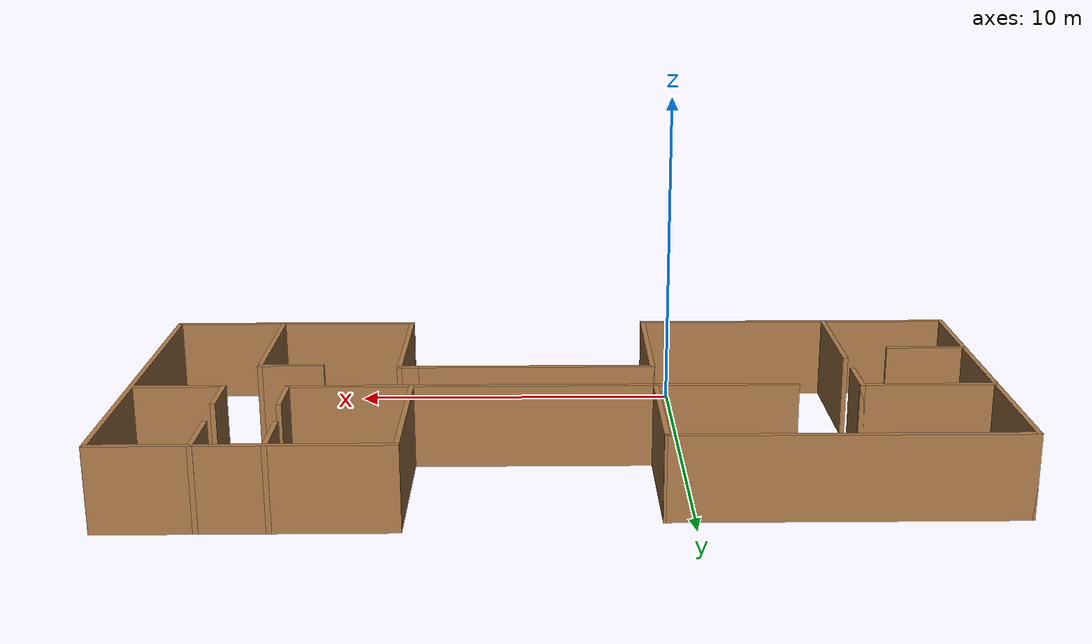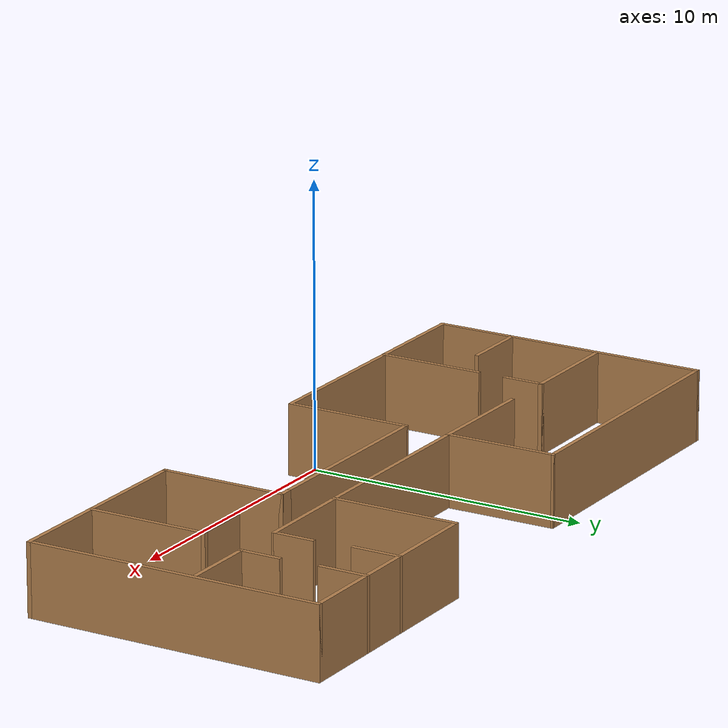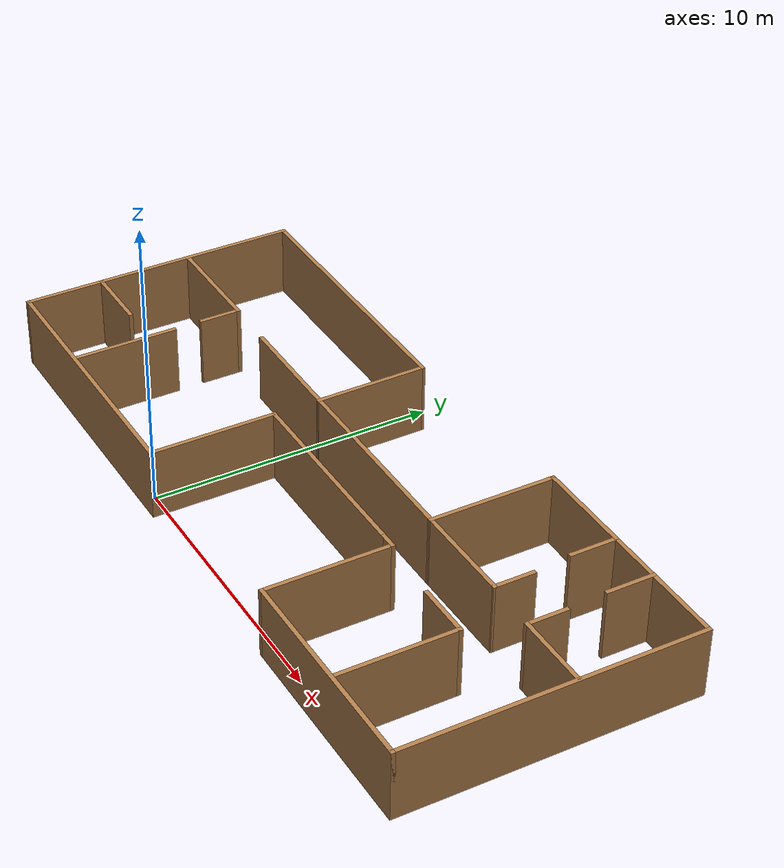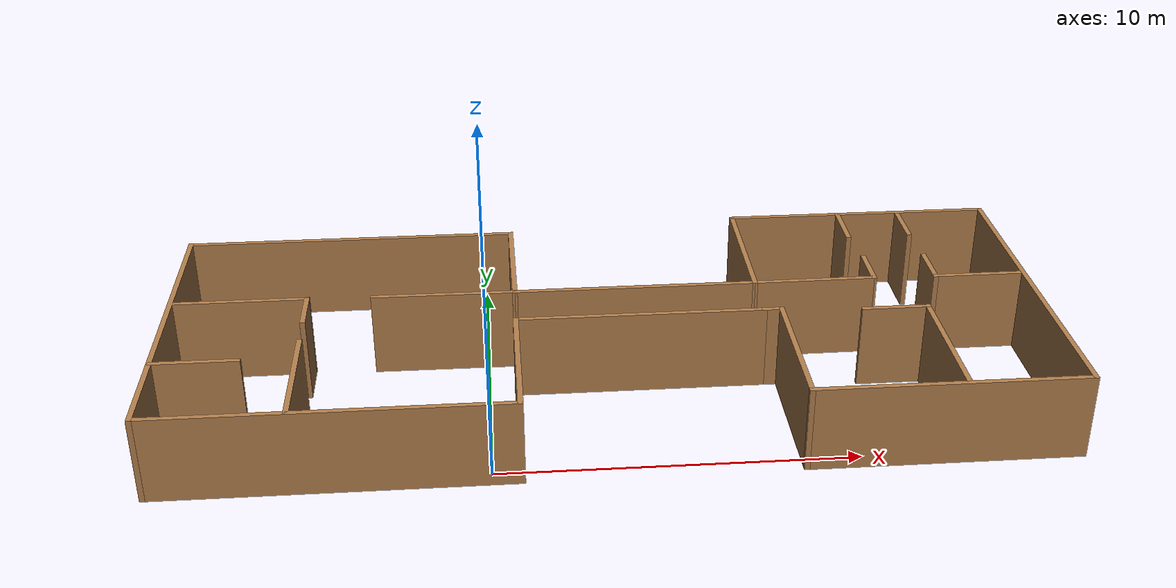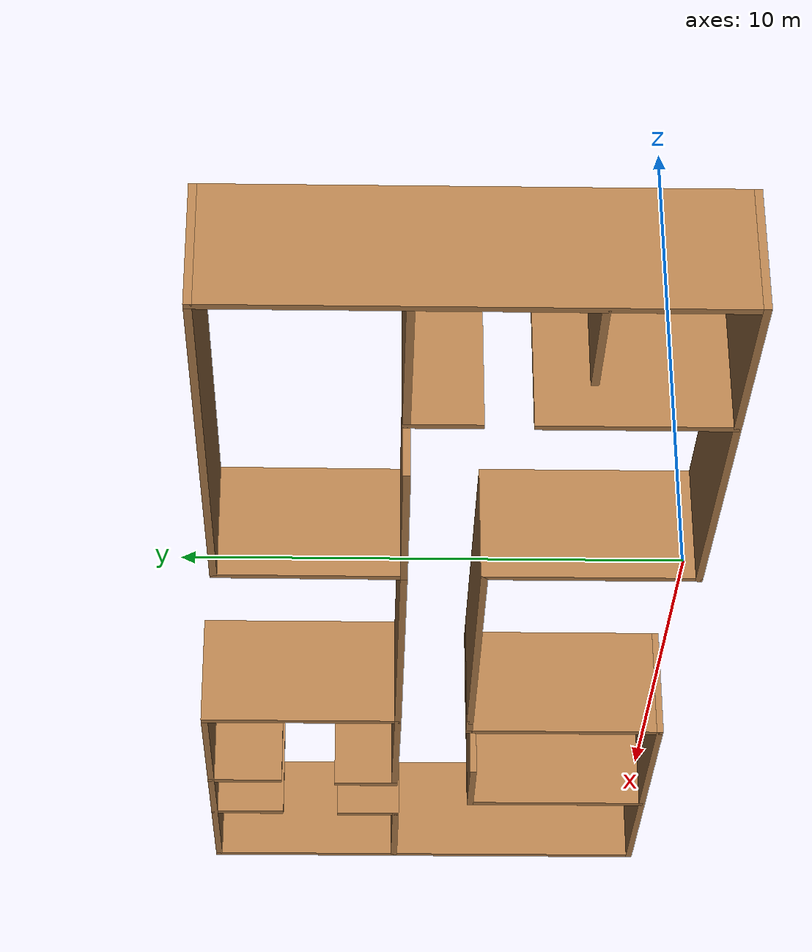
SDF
<?xml version='1.0'?>
<sdf version='1.7'>
  <model name='turtlebot3_project_house'>
    <pose>3.46242 4.763 0 0 -0 0</pose>
    <link name='Wall_0'>
      <collision name='Wall_0_Collision'>
        <geometry>
          <box>
            <size>10.023 0.15 2.5</size>
          </box>
        </geometry>
        <pose>0 0 1.25 0 -0 0</pose>
      </collision>
      <visual name='Wall_0_Visual'>
        <pose>0 0 1.25 0 -0 0</pose>
        <geometry>
          <box>
            <size>10.023 0.15 2.5</size>
          </box>
        </geometry>
        <material>
          <script>
            <uri>file://media/materials/scripts/gazebo.material</uri>
            <name>Gazebo/Wood</name>
          </script>
          <ambient>1 1 1 1</ambient>
        </material>
        <meta>
          <layer>0</layer>
        </meta>
      </visual>
      <pose>-7.59992 -5.176 0 0 -0 3.14159</pose>
    </link>
    <link name='Wall_10'>
      <collision name='Wall_10_Collision'>
        <geometry>
          <box>
            <size>7.22732 0.15 2.5</size>
          </box>
        </geometry>
        <pose>0 0 1.25 0 -0 0</pose>
      </collision>
      <visual name='Wall_10_Visual'>
        <pose>0 0 1.25 0 -0 0</pose>
        <geometry>
          <box>
            <size>7.22732 0.15 2.5</size>
          </box>
        </geometry>
        <material>
          <script>
            <uri>file://media/materials/scripts/gazebo.material</uri>
            <name>Gazebo/Wood</name>
          </script>
          <ambient>1 1 1 1</ambient>
        </material>
        <meta>
          <layer>0</layer>
        </meta>
      </visual>
      <pose>0.89808 0.801 0 0 -0 0</pose>
    </link>
    <link name='Wall_11'>
      <collision name='Wall_11_Collision'>
        <geometry>
          <box>
            <size>4.52293 0.15 2.5</size>
          </box>
        </geometry>
        <pose>0 0 1.25 0 -0 0</pose>
      </collision>
      <visual name='Wall_11_Visual'>
        <pose>0 0 1.25 0 -0 0</pose>
        <geometry>
          <box>
            <size>4.52293 0.15 2.5</size>
          </box>
        </geometry>
        <material>
          <script>
            <uri>file://media/materials/scripts/gazebo.material</uri>
            <name>Gazebo/Wood</name>
          </script>
          <ambient>1 1 1 1</ambient>
        </material>
        <meta>
          <layer>0</layer>
        </meta>
      </visual>
      <pose>4.43658 2.9875 0 0 -0 1.5708</pose>
    </link>
    <link name='Wall_12'>
      <collision name='Wall_12_Collision'>
        <geometry>
          <box>
            <size>8.25 0.15 2.5</size>
          </box>
        </geometry>
        <pose>0 0 1.25 0 -0 0</pose>
      </collision>
      <visual name='Wall_12_Visual'>
        <pose>0 0 1.25 0 -0 0</pose>
        <geometry>
          <box>
            <size>8.25 0.15 2.5</size>
          </box>
        </geometry>
        <material>
          <script>
            <uri>file://media/materials/scripts/gazebo.material</uri>
            <name>Gazebo/Wood</name>
          </script>
          <ambient>1 1 1 1</ambient>
        </material>
        <meta>
          <layer>0</layer>
        </meta>
      </visual>
      <pose>8.48658 5.174 0 0 -0 0</pose>
    </link>
    <link name='Wall_13'>
      <collision name='Wall_13_Collision'>
        <geometry>
          <box>
            <size>10.5 0.15 2.5</size>
          </box>
        </geometry>
        <pose>0 0 1.25 0 -0 0</pose>
      </collision>
      <visual name='Wall_13_Visual'>
        <pose>0 0 1.25 0 -0 0</pose>
        <geometry>
          <box>
            <size>10.5 0.15 2.5</size>
          </box>
        </geometry>
        <material>
          <script>
            <uri>file://media/materials/scripts/gazebo.material</uri>
            <name>Gazebo/Wood</name>
          </script>
          <ambient>1 1 1 1</ambient>
        </material>
        <meta>
          <layer>0</layer>
        </meta>
      </visual>
      <pose>12.5366 -0.001 0 0 -0 -1.5708</pose>
    </link>
    <link name='Wall_14'>
      <collision name='Wall_14_Collision'>
        <geometry>
          <box>
            <size>7.75 0.15 2.5</size>
          </box>
        </geometry>
        <pose>0 0 1.25 0 -0 0</pose>
      </collision>
      <visual name='Wall_14_Visual'>
        <pose>0 0 1.25 0 -0 0</pose>
        <geometry>
          <box>
            <size>7.75 0.15 2.5</size>
          </box>
        </geometry>
        <material>
          <script>
            <uri>file://media/materials/scripts/gazebo.material</uri>
            <name>Gazebo/Wood</name>
          </script>
          <ambient>1 1 1 1</ambient>
        </material>
        <meta>
          <layer>0</layer>
        </meta>
      </visual>
      <pose>8.73658 -5.176 0 0 -0 3.14159</pose>
    </link>
    <link name='Wall_15'>
      <collision name='Wall_15_Collision'>
        <geometry>
          <box>
            <size>4.5 0.15 2.5</size>
          </box>
        </geometry>
        <pose>0 0 1.25 0 -0 0</pose>
      </collision>
      <visual name='Wall_15_Visual'>
        <pose>0 0 1.25 0 -0 0</pose>
        <geometry>
          <box>
            <size>4.5 0.15 2.5</size>
          </box>
        </geometry>
        <material>
          <script>
            <uri>file://media/materials/scripts/gazebo.material</uri>
            <name>Gazebo/Wood</name>
          </script>
          <ambient>1 1 1 1</ambient>
        </material>
        <meta>
          <layer>0</layer>
        </meta>
      </visual>
      <pose>4.93658 -3.001 0 0 -0 1.5708</pose>
    </link>
    <link name='Wall_16'>
      <collision name='Wall_16_Collision'>
        <geometry>
          <box>
            <size>0.65 0.15 2.5</size>
          </box>
        </geometry>
        <pose>0 0 1.25 0 -0 0</pose>
      </collision>
      <visual name='Wall_16_Visual'>
        <pose>0 0 1.25 0 -0 0</pose>
        <geometry>
          <box>
            <size>0.65 0.15 2.5</size>
          </box>
        </geometry>
        <material>
          <script>
            <uri>file://media/materials/scripts/gazebo.material</uri>
            <name>Gazebo/Wood</name>
          </script>
          <ambient>1 1 1 1</ambient>
        </material>
        <meta>
          <layer>0</layer>
        </meta>
      </visual>
      <pose>4.68658 -0.826 0 0 -0 3.14159</pose>
    </link>
    <link name='Wall_18'>
      <collision name='Wall_18_Collision'>
        <geometry>
          <box>
            <size>4.25 0.15 2.5</size>
          </box>
        </geometry>
        <pose>0 0 1.25 0 -0 0</pose>
      </collision>
      <visual name='Wall_18_Visual'>
        <pose>0 0 1.25 0 -0 0</pose>
        <geometry>
          <box>
            <size>4.25 0.15 2.5</size>
          </box>
        </geometry>
        <material>
          <script>
            <uri>file://media/materials/scripts/gazebo.material</uri>
            <name>Gazebo/Wood</name>
          </script>
          <ambient>1 1 1 1</ambient>
        </material>
        <meta>
          <layer>0</layer>
        </meta>
      </visual>
      <pose>-4.69042 0.8125 0 0 -0 3.13598</pose>
    </link>
    <link name='Wall_2'>
      <collision name='Wall_2_Collision'>
        <geometry>
          <box>
            <size>9.977 0.15 2.5</size>
          </box>
        </geometry>
        <pose>0 0 1.25 0 -0 0</pose>
      </collision>
      <visual name='Wall_2_Visual'>
        <pose>0 0 1.25 0 -0 0</pose>
        <geometry>
          <box>
            <size>9.977 0.15 2.5</size>
          </box>
        </geometry>
        <material>
          <script>
            <uri>file://media/materials/scripts/gazebo.material</uri>
            <name>Gazebo/Wood</name>
          </script>
          <ambient>1 1 1 1</ambient>
        </material>
        <meta>
          <layer>0</layer>
        </meta>
      </visual>
      <pose>-12.5364 -0.2625 0 0 -0 1.5708</pose>
    </link>
    <link name='Wall_20'>
      <collision name='Wall_20_Collision'>
        <geometry>
          <box>
            <size>4 0.15 2.5</size>
          </box>
        </geometry>
        <pose>0 0 1.25 0 -0 0</pose>
      </collision>
      <visual name='Wall_20_Visual'>
        <pose>0 0 1.25 0 -0 0</pose>
        <geometry>
          <box>
            <size>4 0.15 2.5</size>
          </box>
        </geometry>
        <material>
          <script>
            <uri>file://media/materials/scripts/gazebo.material</uri>
            <name>Gazebo/Wood</name>
          </script>
          <ambient>1 1 1 1</ambient>
        </material>
        <meta>
          <layer>0</layer>
        </meta>
      </visual>
      <pose>-10.5694 0.872 0 0 -0 0</pose>
    </link>
    <link name='Wall_21'>
      <collision name='Wall_21_Collision'>
        <geometry>
          <box>
            <size>1.5 0.15 2.5</size>
          </box>
        </geometry>
        <pose>0 0 1.25 0 -0 0</pose>
      </collision>
      <visual name='Wall_21_Visual'>
        <pose>0 0 1.25 0 -0 0</pose>
        <geometry>
          <box>
            <size>1.5 0.15 2.5</size>
          </box>
        </geometry>
        <material>
          <script>
            <uri>file://media/materials/scripts/gazebo.material</uri>
            <name>Gazebo/Wood</name>
          </script>
          <ambient>1 1 1 1</ambient>
        </material>
        <meta>
          <layer>0</layer>
        </meta>
      </visual>
      <pose>-8.64442 0.197 0 0 -0 -1.5708</pose>
    </link>
    <link name='Wall_23'>
      <collision name='Wall_23_Collision'>
        <geometry>
          <box>
            <size>3.75 0.15 2.5</size>
          </box>
        </geometry>
        <pose>0 0 1.25 0 -0 0</pose>
      </collision>
      <visual name='Wall_23_Visual'>
        <pose>0 0 1.25 0 -0 0</pose>
        <geometry>
          <box>
            <size>3.75 0.15 2.5</size>
          </box>
        </geometry>
        <material>
          <script>
            <uri>file://media/materials/scripts/gazebo.material</uri>
            <name>Gazebo/Wood</name>
          </script>
          <ambient>1 1 1 1</ambient>
        </material>
        <meta>
          <layer>0</layer>
        </meta>
      </visual>
      <pose>-8.63242 -3.342 0 0 -0 -1.5708</pose>
    </link>
    <link name='Wall_25'>
      <collision name='Wall_25_Collision'>
        <geometry>
          <box>
            <size>2.5 0.15 2.5</size>
          </box>
        </geometry>
        <pose>0 0 1.25 0 -0 0</pose>
      </collision>
      <visual name='Wall_25_Visual'>
        <pose>0 0 1.25 0 -0 0</pose>
        <geometry>
          <box>
            <size>2.5 0.15 2.5</size>
          </box>
        </geometry>
        <material>
          <script>
            <uri>file://media/materials/scripts/gazebo.material</uri>
            <name>Gazebo/Wood</name>
          </script>
          <ambient>1 1 1 1</ambient>
        </material>
        <meta>
          <layer>0</layer>
        </meta>
      </visual>
      <pose>-11.3594 -2.447 0 0 -0 0</pose>
    </link>
    <link name='Wall_27'>
      <collision name='Wall_27_Collision'>
        <geometry>
          <box>
            <size>3.72707 0.15 2.5</size>
          </box>
        </geometry>
        <pose>0 0 1.25 0 -0 0</pose>
      </collision>
      <visual name='Wall_27_Visual'>
        <pose>0 0 1.25 0 -0 0</pose>
        <geometry>
          <box>
            <size>3.72707 0.15 2.5</size>
          </box>
        </geometry>
        <material>
          <script>
            <uri>file://media/materials/scripts/gazebo.material</uri>
            <name>Gazebo/Wood</name>
          </script>
          <ambient>1 1 1 1</ambient>
        </material>
        <meta>
          <layer>0</layer>
        </meta>
      </visual>
      <pose>6.22508 0.8125 0 0 -0 0.00643</pose>
    </link>
    <link name='Wall_28'>
      <collision name='Wall_28_Collision'>
        <geometry>
          <box>
            <size>1.5 0.15 2.5</size>
          </box>
        </geometry>
        <pose>0 0 1.25 0 -0 0</pose>
      </collision>
      <visual name='Wall_28_Visual'>
        <pose>0 0 1.25 0 -0 0</pose>
        <geometry>
          <box>
            <size>1.5 0.15 2.5</size>
          </box>
        </geometry>
        <material>
          <script>
            <uri>file://media/materials/scripts/gazebo.material</uri>
            <name>Gazebo/Wood</name>
          </script>
          <ambient>1 1 1 1</ambient>
        </material>
        <meta>
          <layer>0</layer>
        </meta>
      </visual>
      <pose>8.01358 1.499 0 0 -0 1.5708</pose>
    </link>
    <link name='Wall_30'>
      <collision name='Wall_30_Collision'>
        <geometry>
          <box>
            <size>1.75 0.15 2.5</size>
          </box>
        </geometry>
        <pose>0 0 1.25 0 -0 0</pose>
      </collision>
      <visual name='Wall_30_Visual'>
        <pose>0 0 1.25 0 -0 0</pose>
        <geometry>
          <box>
            <size>1.75 0.15 2.5</size>
          </box>
        </geometry>
        <material>
          <script>
            <uri>file://media/materials/scripts/gazebo.material</uri>
            <name>Gazebo/Wood</name>
          </script>
          <ambient>1 1 1 1</ambient>
        </material>
        <meta>
          <layer>0</layer>
        </meta>
      </visual>
      <pose>7.86058 4.376 0 0 -0 -1.5708</pose>
    </link>
    <link name='Wall_32'>
      <collision name='Wall_32_Collision'>
        <geometry>
          <box>
            <size>2.75 0.15 2.5</size>
          </box>
        </geometry>
        <pose>0 0 1.25 0 -0 0</pose>
      </collision>
      <visual name='Wall_32_Visual'>
        <pose>0 0 1.25 0 -0 0</pose>
        <geometry>
          <box>
            <size>2.75 0.15 2.5</size>
          </box>
        </geometry>
        <material>
          <script>
            <uri>file://media/materials/scripts/gazebo.material</uri>
            <name>Gazebo/Wood</name>
          </script>
          <ambient>1 1 1 1</ambient>
        </material>
        <meta>
          <layer>0</layer>
        </meta>
      </visual>
      <pose>11.1666 0.771 0 0 -0 3.14159</pose>
    </link>
    <link name='Wall_33'>
      <collision name='Wall_33_Collision'>
        <geometry>
          <box>
            <size>1.5 0.15 2.5</size>
          </box>
        </geometry>
        <pose>0 0 1.25 0 -0 0</pose>
      </collision>
      <visual name='Wall_33_Visual'>
        <pose>0 0 1.25 0 -0 0</pose>
        <geometry>
          <box>
            <size>1.5 0.15 2.5</size>
          </box>
        </geometry>
        <material>
          <script>
            <uri>file://media/materials/scripts/gazebo.material</uri>
            <name>Gazebo/Wood</name>
          </script>
          <ambient>1 1 1 1</ambient>
        </material>
        <meta>
          <layer>0</layer>
        </meta>
      </visual>
      <pose>9.86658 1.446 0 0 -0 1.5708</pose>
    </link>
    <link name='Wall_35'>
      <collision name='Wall_35_Collision'>
        <geometry>
          <box>
            <size>1.75 0.15 2.5</size>
          </box>
        </geometry>
        <pose>0 0 1.25 0 -0 0</pose>
      </collision>
      <visual name='Wall_35_Visual'>
        <pose>0 0 1.25 0 -0 0</pose>
        <geometry>
          <box>
            <size>1.75 0.15 2.5</size>
          </box>
        </geometry>
        <material>
          <script>
            <uri>file://media/materials/scripts/gazebo.material</uri>
            <name>Gazebo/Wood</name>
          </script>
          <ambient>1 1 1 1</ambient>
        </material>
        <meta>
          <layer>0</layer>
        </meta>
      </visual>
      <pose>9.79158 4.376 0 0 -0 -1.5708</pose>
    </link>
    <link name='Wall_37'>
      <collision name='Wall_37_Collision'>
        <geometry>
          <box>
            <size>4.25 0.15 2.5</size>
          </box>
        </geometry>
        <pose>0 0 1.25 0 -0 0</pose>
      </collision>
      <visual name='Wall_37_Visual'>
        <pose>0 0 1.25 0 -0 0</pose>
        <geometry>
          <box>
            <size>4.25 0.15 2.5</size>
          </box>
        </geometry>
        <material>
          <script>
            <uri>file://media/materials/scripts/gazebo.material</uri>
            <name>Gazebo/Wood</name>
          </script>
          <ambient>1 1 1 1</ambient>
        </material>
        <meta>
          <layer>0</layer>
        </meta>
      </visual>
      <pose>9.14758 -3.072 0 0 -0 1.5708</pose>
    </link>
    <link name='Wall_39'>
      <collision name='Wall_39_Collision'>
        <geometry>
          <box>
            <size>2 0.15 2.5</size>
          </box>
        </geometry>
        <pose>0 0 1.25 0 -0 0</pose>
      </collision>
      <visual name='Wall_39_Visual'>
        <pose>0 0 1.25 0 -0 0</pose>
        <geometry>
          <box>
            <size>2 0.15 2.5</size>
          </box>
        </geometry>
        <material>
          <script>
            <uri>file://media/materials/scripts/gazebo.material</uri>
            <name>Gazebo/Wood</name>
          </script>
          <ambient>1 1 1 1</ambient>
        </material>
        <meta>
          <layer>0</layer>
        </meta>
      </visual>
      <pose>8.22258 -1.022 0 0 -0 3.14159</pose>
    </link>
    <link name='Wall_4'>
      <collision name='Wall_4_Collision'>
        <geometry>
          <box>
            <size>10.0233 0.15 2.5</size>
          </box>
        </geometry>
        <pose>0 0 1.25 0 -0 0</pose>
      </collision>
      <visual name='Wall_4_Visual'>
        <pose>0 0 1.25 0 -0 0</pose>
        <geometry>
          <box>
            <size>10.0233 0.15 2.5</size>
          </box>
        </geometry>
        <material>
          <script>
            <uri>file://media/materials/scripts/gazebo.material</uri>
            <name>Gazebo/Wood</name>
          </script>
          <ambient>1 1 1 1</ambient>
        </material>
        <meta>
          <layer>0</layer>
        </meta>
      </visual>
      <pose>-7.59992 4.651 0 0 -0 0</pose>
    </link>
    <link name='Wall_5'>
      <collision name='Wall_5_Collision'>
        <geometry>
          <box>
            <size>4.00007 0.15 2.5</size>
          </box>
        </geometry>
        <pose>0 0 1.25 0 -0 0</pose>
      </collision>
      <visual name='Wall_5_Visual'>
        <pose>0 0 1.25 0 -0 0</pose>
        <geometry>
          <box>
            <size>4.00007 0.15 2.5</size>
          </box>
        </geometry>
        <material>
          <script>
            <uri>file://media/materials/scripts/gazebo.material</uri>
            <name>Gazebo/Wood</name>
          </script>
          <ambient>1 1 1 1</ambient>
        </material>
        <meta>
          <layer>0</layer>
        </meta>
      </visual>
      <pose>-2.65192 2.726 0 0 -0 -1.56482</pose>
    </link>
    <link name='Wall_7'>
      <collision name='Wall_7_Collision'>
        <geometry>
          <box>
            <size>4.5 0.15 2.5</size>
          </box>
        </geometry>
        <pose>0 0 1.25 0 -0 0</pose>
      </collision>
      <visual name='Wall_7_Visual'>
        <pose>0 0 1.25 0 -0 0</pose>
        <geometry>
          <box>
            <size>4.5 0.15 2.5</size>
          </box>
        </geometry>
        <material>
          <script>
            <uri>file://media/materials/scripts/gazebo.material</uri>
            <name>Gazebo/Wood</name>
          </script>
          <ambient>1 1 1 1</ambient>
        </material>
        <meta>
          <layer>0</layer>
        </meta>
      </visual>
      <pose>-2.66342 -3.001 0 0 -0 1.5708</pose>
    </link>
    <link name='Wall_8'>
      <collision name='Wall_8_Collision'>
        <geometry>
          <box>
            <size>7.25 0.15 2.5</size>
          </box>
        </geometry>
        <pose>0 0 1.25 0 -0 0</pose>
      </collision>
      <visual name='Wall_8_Visual'>
        <pose>0 0 1.25 0 -0 0</pose>
        <geometry>
          <box>
            <size>7.25 0.15 2.5</size>
          </box>
        </geometry>
        <material>
          <script>
            <uri>file://media/materials/scripts/gazebo.material</uri>
            <name>Gazebo/Wood</name>
          </script>
          <ambient>1 1 1 1</ambient>
        </material>
        <meta>
          <layer>0</layer>
        </meta>
      </visual>
      <pose>0.88658 -0.826 0 0 -0 0</pose>
    </link>
    <static>1</static>
  </model>
</sdf>
